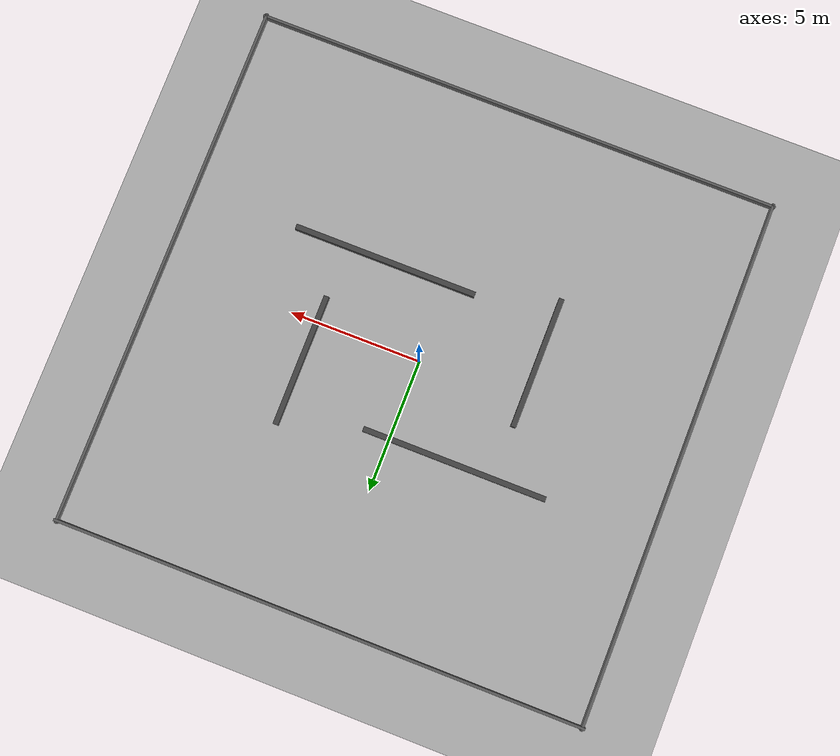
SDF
<?xml version="1.0" ?>
<sdf version="1.9">
  <world name="knowledge_world">

    <!-- Physics -->
    <physics name="1ms" type="ode">
      <max_step_size>0.01</max_step_size>
      <real_time_factor>1.0</real_time_factor>
    </physics>

    <!-- Required world plugins -->
    <plugin filename="gz-sim-physics-system"
            name="gz::sim::systems::Physics"/>
    <plugin filename="gz-sim-user-commands-system"
            name="gz::sim::systems::UserCommands"/>
    <plugin filename="gz-sim-scene-broadcaster-system"
            name="gz::sim::systems::SceneBroadcaster"/>
    <plugin filename="gz-sim-sensors-system"
            name="gz::sim::systems::Sensors">
      <render_engine>ogre2</render_engine>
    </plugin>
    <plugin filename="gz-sim-imu-system"
            name="gz::sim::systems::Imu"/>

    <!-- Ambient light -->
    <ambient>0.6 0.6 0.6 1</ambient>
    <light name="directional_light" type="directional">
      <cast_shadows>false</cast_shadows>
      <direction>-0.5 0.1 -0.9</direction>
      <diffuse>0.8 0.8 0.8 1</diffuse>
      <specular>0.2 0.2 0.2 1</specular>
    </light>

    <!-- ── Ground plane ──────────────────────────────────────────────────── -->
    <model name="ground_plane">
      <static>true</static>
      <link name="link">
        <collision name="collision">
          <geometry>
            <plane>
              <normal>0 0 1</normal>
              <size>30 30</size>
            </plane>
          </geometry>
        </collision>
        <visual name="visual">
          <geometry>
            <plane>
              <normal>0 0 1</normal>
              <size>30 30</size>
            </plane>
          </geometry>
          <material>
            <ambient>0.75 0.75 0.75 1</ambient>
            <diffuse>0.75 0.75 0.75 1</diffuse>
          </material>
        </visual>
      </link>
    </model>

    <!-- ── Boundary walls (20 m square, 0.3 m high, 0.1 m thick) ────────── -->
    <!-- North wall: y = +10 -->
    <model name="wall_north">
      <static>true</static>
      <pose>0 10 0.15 0 0 0</pose>
      <link name="link">
        <collision name="collision">
          <geometry><box><size>20.2 0.1 0.3</size></box></geometry>
        </collision>
        <visual name="visual">
          <geometry><box><size>20.2 0.1 0.3</size></box></geometry>
          <material><ambient>0.4 0.4 0.4 1</ambient></material>
        </visual>
      </link>
    </model>

    <!-- South wall: y = -10 -->
    <model name="wall_south">
      <static>true</static>
      <pose>0 -10 0.15 0 0 0</pose>
      <link name="link">
        <collision name="collision">
          <geometry><box><size>20.2 0.1 0.3</size></box></geometry>
        </collision>
        <visual name="visual">
          <geometry><box><size>20.2 0.1 0.3</size></box></geometry>
          <material><ambient>0.4 0.4 0.4 1</ambient></material>
        </visual>
      </link>
    </model>

    <!-- East wall: x = +10 -->
    <model name="wall_east">
      <static>true</static>
      <pose>10 0 0.15 0 0 0</pose>
      <link name="link">
        <collision name="collision">
          <geometry><box><size>0.1 20.2 0.3</size></box></geometry>
        </collision>
        <visual name="visual">
          <geometry><box><size>0.1 20.2 0.3</size></box></geometry>
          <material><ambient>0.4 0.4 0.4 1</ambient></material>
        </visual>
      </link>
    </model>

    <!-- West wall: x = -10 -->
    <model name="wall_west">
      <static>true</static>
      <pose>-10 0 0.15 0 0 0</pose>
      <link name="link">
        <collision name="collision">
          <geometry><box><size>0.1 20.2 0.3</size></box></geometry>
        </collision>
        <visual name="visual">
          <geometry><box><size>0.1 20.2 0.3</size></box></geometry>
          <material><ambient>0.4 0.4 0.4 1</ambient></material>
        </visual>
      </link>
    </model>

    <model name="maze_h1">
      <static>true</static>
      <pose>-2.5 3.0 0.15 0 0 0</pose>
      <link name="link">
        <collision name="collision">
          <geometry><box><size>7.0 0.2 0.3</size></box></geometry>
        </collision>
        <visual name="visual">
          <geometry><box><size>7.0 0.2 0.3</size></box></geometry>
          <material><ambient>0.3 0.3 0.3 1</ambient></material>
        </visual>
      </link>
    </model>

    <model name="maze_h2">
      <static>true</static>
      <pose>2.5 -3.0 0.15 0 0 0</pose>
      <link name="link">
        <collision name="collision">
          <geometry><box><size>7.0 0.2 0.3</size></box></geometry>
        </collision>
        <visual name="visual">
          <geometry><box><size>7.0 0.2 0.3</size></box></geometry>
          <material><ambient>0.3 0.3 0.3 1</ambient></material>
        </visual>
      </link>
    </model>

    <model name="maze_v1">
      <static>true</static>
      <pose>-4.0 -1.5 0.15 0 0 0</pose>
      <link name="link">
        <collision name="collision">
          <geometry><box><size>0.2 5.0 0.3</size></box></geometry>
        </collision>
        <visual name="visual">
          <geometry><box><size>0.2 5.0 0.3</size></box></geometry>
          <material><ambient>0.3 0.3 0.3 1</ambient></material>
        </visual>
      </link>
    </model>

    <model name="maze_v2">
      <static>true</static>
      <pose>4.0 1.5 0.15 0 0 0</pose>
      <link name="link">
        <collision name="collision">
          <geometry><box><size>0.2 5.0 0.3</size></box></geometry>
        </collision>
        <visual name="visual">
          <geometry><box><size>0.2 5.0 0.3</size></box></geometry>
          <material><ambient>0.3 0.3 0.3 1</ambient></material>
        </visual>
      </link>
    </model>
  </world>
</sdf>
